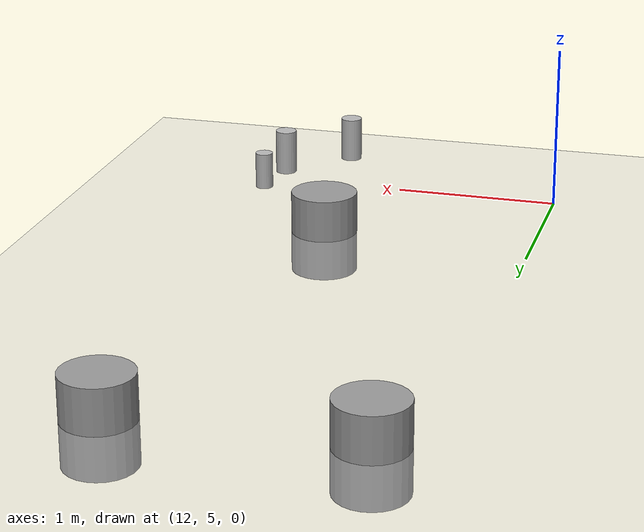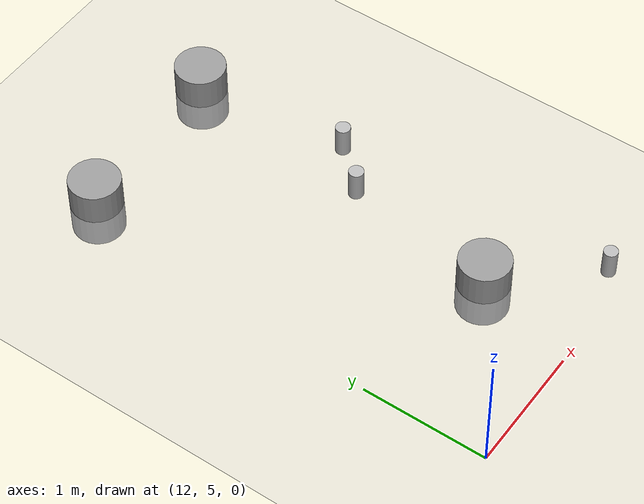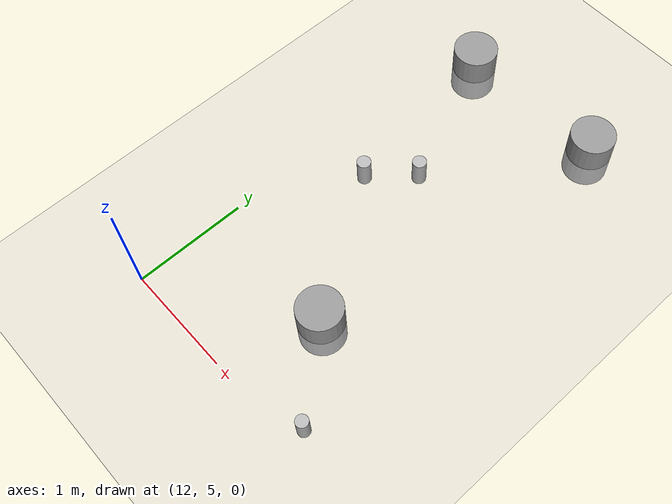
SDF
<sdf version="1.7">
 <world name="default">
  <model name="ground_plane">
   <static>1</static>
   <link name="link">
    <collision name="collision">
     <geometry><plane><normal>0 0 1</normal><size>100 100</size></plane></geometry>
     <surface>
      <contact><collide_bitmask>65535</collide_bitmask></contact>
      <friction><ode><mu>100</mu><mu2>50</mu2></ode></friction>
     </surface>
    </collision>
    <visual name="visual">
     <cast_shadows>0</cast_shadows>
     <geometry><plane><normal>0 0 1</normal><size>100 100</size></plane></geometry>
     <material>
      <script><uri>file://media/materials/scripts/gazebo.material</uri><name>Gazebo/Grey</name></script>
     </material>
    </visual>
   </link>
  </model>
  <model name="beer">
   <link name="link">
    <pose>0 0 0.115 0 -0 0</pose>
    <inertial>
     <mass>0.39</mass>
     <inertia><ixx>0.00058</ixx><ixy>0</ixy><ixz>0</ixz><iyy>0.00058</iyy><iyz>0</iyz><izz>0.00019</izz></inertia>
    </inertial>
    <collision name="collision">
     <geometry><cylinder><radius>0.055</radius><length>0.23</length></cylinder></geometry>
    </collision>
    <visual name="visual">
     <geometry><cylinder><radius>0.055</radius><length>0.23</length></cylinder></geometry>
     <material>
      <script>
       <uri>model://beer/materials/scripts</uri>
       <uri>model://beer/materials/textures</uri>
       <name>Beer/Diffuse</name>
      </script>
     </material>
    </visual>
   </link>
   <pose>13.1693 6.98862 0.7747 0 -0 0</pose>
  </model>
  <model name="beer_1">
   <link name="link">
    <pose>0 0 0.115 0 -0 0</pose>
    <inertial>
     <mass>0.39</mass>
     <inertia><ixx>0.00058</ixx><ixy>0</ixy><ixz>0</ixz><iyy>0.00058</iyy><iyz>0</iyz><izz>0.00019</izz></inertia>
    </inertial>
    <collision name="collision">
     <geometry><cylinder><radius>0.055</radius><length>0.23</length></cylinder></geometry>
    </collision>
    <visual name="visual">
     <geometry><cylinder><radius>0.055</radius><length>0.23</length></cylinder></geometry>
     <material>
      <script>
       <uri>model://beer/materials/scripts</uri>
       <uri>model://beer/materials/textures</uri>
       <name>Beer/Diffuse</name>
      </script>
     </material>
    </visual>
   </link>
   <pose>13.8699 5.1571 0 0 -0 0</pose>
  </model>
  <model name="beer_5">
   <link name="link">
    <pose>0 0 0.115 0 -0 0</pose>
    <inertial>
     <mass>0.39</mass>
     <inertia><ixx>0.00058</ixx><ixy>0</ixy><ixz>0</ixz><iyy>0.00058</iyy><iyz>0</iyz><izz>0.00019</izz></inertia>
    </inertial>
    <collision name="collision">
     <geometry><cylinder><radius>0.055</radius><length>0.23</length></cylinder></geometry>
    </collision>
    <visual name="visual">
     <geometry><cylinder><radius>0.055</radius><length>0.23</length></cylinder></geometry>
     <material>
      <script>
       <uri>model://beer/materials/scripts</uri>
       <uri>model://beer/materials/textures</uri>
       <name>Beer/Diffuse</name>
      </script>
     </material>
    </visual>
   </link>
   <pose>12.8853 6.67968 0.7747 0 -0 0</pose>
  </model>
  <model name="cylinder_3">
   <link name="link">
    <inertial>
     <mass>1</mass>
     <inertia><ixx>0.145833</ixx><ixy>0</ixy><ixz>0</ixz><iyy>0.145833</iyy><iyz>0</iyz><izz>0.125</izz></inertia>
    </inertial>
    <visual name="visual">
     <geometry><cylinder><radius>0.2</radius><length>0.5</length></cylinder></geometry>
     <material>
      <script><name>Gazebo/Grey</name><uri>file://media/materials/scripts/gazebo.material</uri></script>
      <shader type="pixel"><normal_map>__default__</normal_map></shader>
      <ambient>0.3 0.3 0.3 1</ambient>
      <diffuse>0.7 0.7 0.7 1</diffuse>
      <specular>0.01 0.01 0.01 1</specular>
      <emissive>0 0 0 1</emissive>
     </material>
    </visual>
    <collision name="collision">
     <geometry><cylinder><radius>0.2</radius><length>0.5</length></cylinder></geometry>
     <surface>
      <friction>
       <ode><mu>1</mu><mu2>1</mu2><fdir1>0 0 0</fdir1><slip1>0</slip1><slip2>0</slip2></ode>
       <torsional>
        <coefficient>1</coefficient>
        <patch_radius>0</patch_radius>
        <surface_radius>0</surface_radius>
        <use_patch_radius>1</use_patch_radius>
        <ode><slip>0</slip></ode>
       </torsional>
      </friction>
      <bounce><restitution_coefficient>0</restitution_coefficient><threshold>1e+06</threshold></bounce>
      <contact>
       <collide_without_contact>0</collide_without_contact>
       <collide_without_contact_bitmask>1</collide_without_contact_bitmask>
       <collide_bitmask>1</collide_bitmask>
       <ode>
        <soft_cfm>0</soft_cfm>
        <soft_erp>0.2</soft_erp>
        <kp>1e+13</kp>
        <kd>1</kd>
        <max_vel>0.01</max_vel>
        <min_depth>0</min_depth>
       </ode>
       <bullet>
        <split_impulse>1</split_impulse>
        <split_impulse_penetration_threshold>-0.01</split_impulse_penetration_threshold>
        <soft_cfm>0</soft_cfm>
        <soft_erp>0.2</soft_erp>
        <kp>1e+13</kp>
        <kd>1</kd>
       </bullet>
      </contact>
     </surface>
    </collision>
   </link>
   <static>0</static>
   <pose>12.2841 8.57431 0 0 -0 0</pose>
  </model>
  <model name="cylinder_5">
   <link name="link">
    <inertial>
     <mass>1</mass>
     <inertia><ixx>0.145833</ixx><ixy>0</ixy><ixz>0</ixz><iyy>0.145833</iyy><iyz>0</iyz><izz>0.125</izz></inertia>
    </inertial>
    <visual name="visual">
     <geometry><cylinder><radius>0.2</radius><length>0.5</length></cylinder></geometry>
     <material>
      <script><name>Gazebo/Grey</name><uri>file://media/materials/scripts/gazebo.material</uri></script>
      <shader type="pixel"><normal_map>__default__</normal_map></shader>
      <ambient>0.3 0.3 0.3 1</ambient>
      <diffuse>0.7 0.7 0.7 1</diffuse>
      <specular>0.01 0.01 0.01 1</specular>
      <emissive>0 0 0 1</emissive>
     </material>
    </visual>
    <collision name="collision">
     <geometry><cylinder><radius>0.2</radius><length>0.5</length></cylinder></geometry>
     <surface>
      <friction>
       <ode><mu>1</mu><mu2>1</mu2><fdir1>0 0 0</fdir1><slip1>0</slip1><slip2>0</slip2></ode>
       <torsional>
        <coefficient>1</coefficient>
        <patch_radius>0</patch_radius>
        <surface_radius>0</surface_radius>
        <use_patch_radius>1</use_patch_radius>
        <ode><slip>0</slip></ode>
       </torsional>
      </friction>
      <bounce><restitution_coefficient>0</restitution_coefficient><threshold>1e+06</threshold></bounce>
      <contact>
       <collide_without_contact>0</collide_without_contact>
       <collide_without_contact_bitmask>1</collide_without_contact_bitmask>
       <collide_bitmask>1</collide_bitmask>
       <ode>
        <soft_cfm>0</soft_cfm>
        <soft_erp>0.2</soft_erp>
        <kp>1e+13</kp>
        <kd>1</kd>
        <max_vel>0.01</max_vel>
        <min_depth>0</min_depth>
       </ode>
       <bullet>
        <split_impulse>1</split_impulse>
        <split_impulse_penetration_threshold>-0.01</split_impulse_penetration_threshold>
        <soft_cfm>0</soft_cfm>
        <soft_erp>0.2</soft_erp>
        <kp>1e+13</kp>
        <kd>1</kd>
       </bullet>
      </contact>
     </surface>
    </collision>
   </link>
   <static>0</static>
   <pose>13.2775 5.83705 0 0 -0 0</pose>
  </model>
  <model name="cylinder_10">
   <link name="link">
    <inertial>
     <mass>1</mass>
     <inertia><ixx>0.145833</ixx><ixy>0</ixy><ixz>0</ixz><iyy>0.145833</iyy><iyz>0</iyz><izz>0.125</izz></inertia>
    </inertial>
    <visual name="visual">
     <geometry><cylinder><radius>0.2</radius><length>0.5</length></cylinder></geometry>
     <material>
      <script><name>Gazebo/Grey</name><uri>file://media/materials/scripts/gazebo.material</uri></script>
      <shader type="pixel"><normal_map>__default__</normal_map></shader>
      <ambient>0.3 0.3 0.3 1</ambient>
      <diffuse>0.7 0.7 0.7 1</diffuse>
      <specular>0.01 0.01 0.01 1</specular>
      <emissive>0 0 0 1</emissive>
     </material>
    </visual>
    <collision name="collision">
     <geometry><cylinder><radius>0.2</radius><length>0.5</length></cylinder></geometry>
     <surface>
      <friction>
       <ode><mu>1</mu><mu2>1</mu2><fdir1>0 0 0</fdir1><slip1>0</slip1><slip2>0</slip2></ode>
       <torsional>
        <coefficient>1</coefficient>
        <patch_radius>0</patch_radius>
        <surface_radius>0</surface_radius>
        <use_patch_radius>1</use_patch_radius>
        <ode><slip>0</slip></ode>
       </torsional>
      </friction>
      <bounce><restitution_coefficient>0</restitution_coefficient><threshold>1e+06</threshold></bounce>
      <contact>
       <collide_without_contact>0</collide_without_contact>
       <collide_without_contact_bitmask>1</collide_without_contact_bitmask>
       <collide_bitmask>1</collide_bitmask>
       <ode>
        <soft_cfm>0</soft_cfm>
        <soft_erp>0.2</soft_erp>
        <kp>1e+13</kp>
        <kd>1</kd>
        <max_vel>0.01</max_vel>
        <min_depth>0</min_depth>
       </ode>
       <bullet>
        <split_impulse>1</split_impulse>
        <split_impulse_penetration_threshold>-0.01</split_impulse_penetration_threshold>
        <soft_cfm>0</soft_cfm>
        <soft_erp>0.2</soft_erp>
        <kp>1e+13</kp>
        <kd>1</kd>
       </bullet>
      </contact>
     </surface>
    </collision>
   </link>
   <static>0</static>
   <pose>13.6435 8.63926 0 0 -0 0</pose>
  </model>
 </world>
</sdf>
